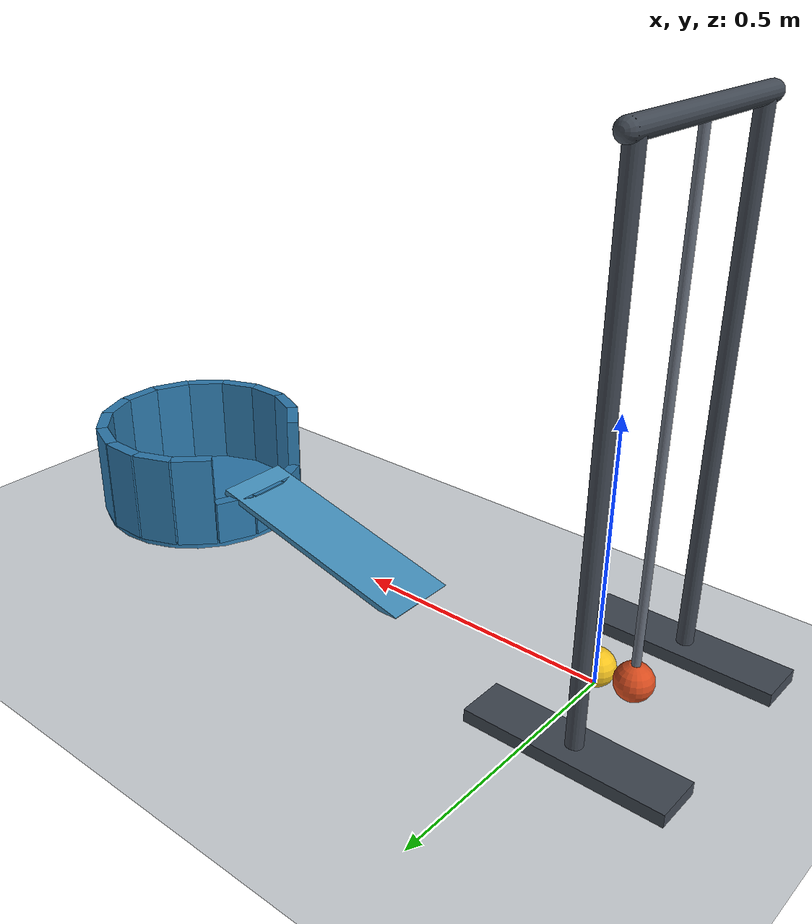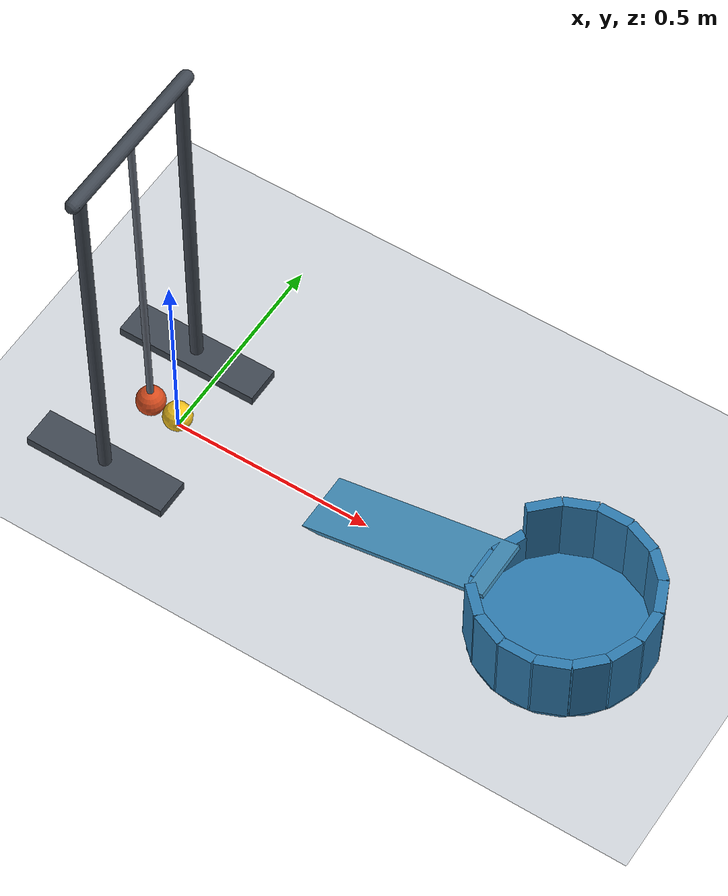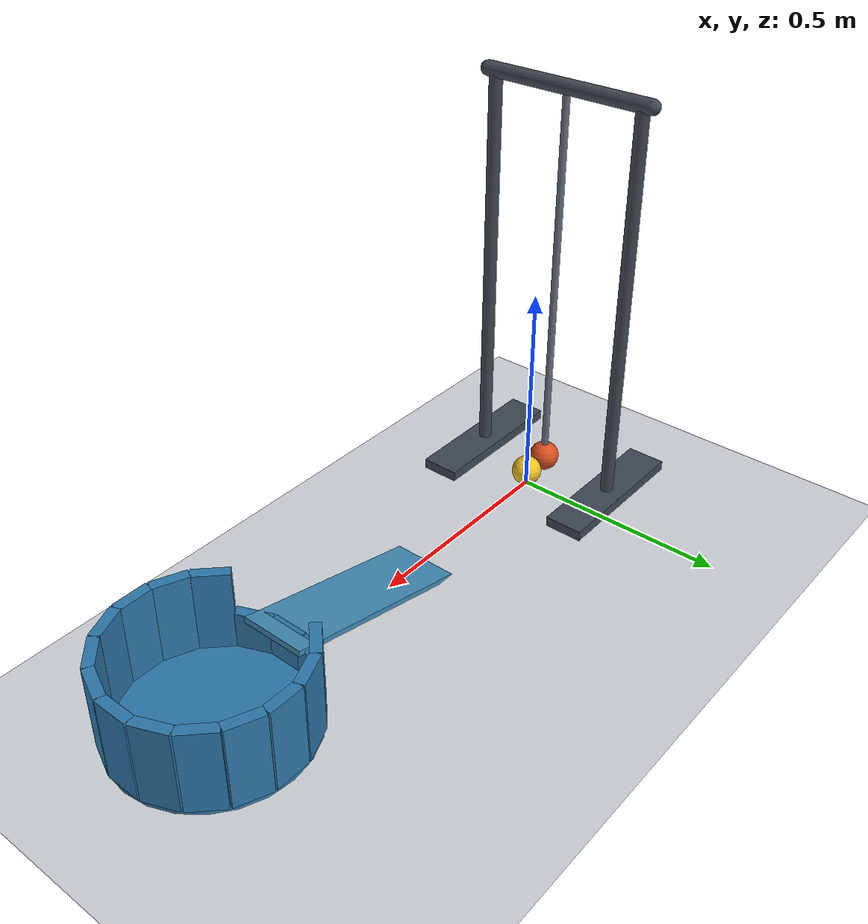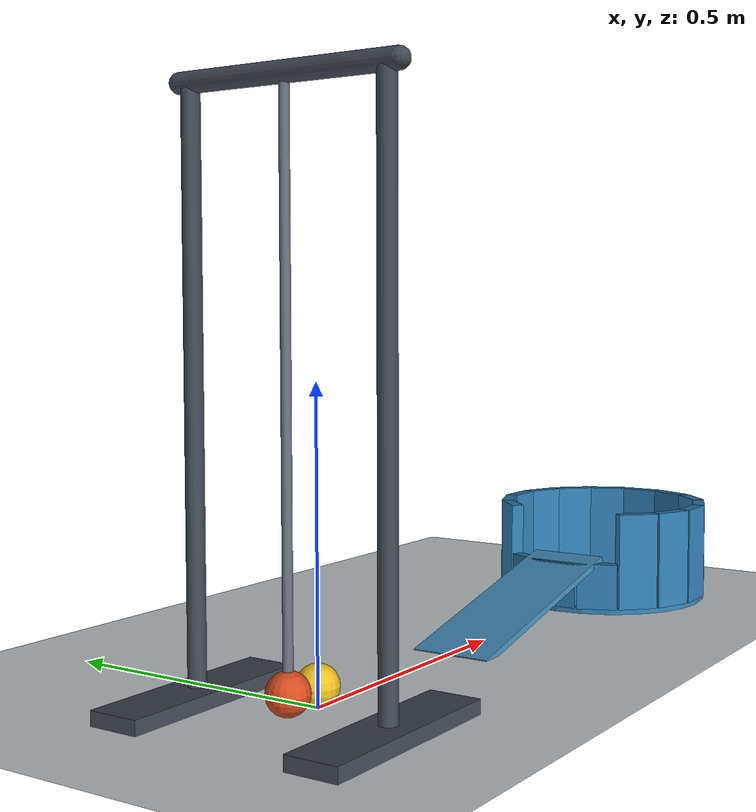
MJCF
<mujoco model="pendulum_ball_into_cup">
  <compiler angle="degree" autolimits="true"/>
  <option timestep="0.002" gravity="0 0 -9.81" integrator="implicitfast" solver="Newton" iterations="100" cone="elliptic"/>
  <size njmax="2000" nconmax="400"/>

  <visual>
    <global azimuth="135" elevation="-25"/>
    <headlight ambient="0.35 0.35 0.35" diffuse="0.7 0.7 0.7" specular="0.2 0.2 0.2"/>
  </visual>

  <worldbody>
    <light name="overhead" pos="0 0 3" dir="0 0 -1" diffuse="0.8 0.8 0.8"/>
    <camera name="overview" pos="2.3 -3.2 1.8" xyaxes="0.866 0.5 0 -0.19 0.329 0.925"/>

    <geom name="floor" type="plane" pos="0 0 0" size="4 3 0.1" rgba="0.82 0.84 0.86 1" friction="0.55 0.002 0.0002" condim="6" solref="0.008 1" solimp="0.95 0.99 0.001"/>

    <body name="support" pos="-0.072 0 0">
      <geom name="support_left_foot" type="box" pos="0 -0.18 0.012" size="0.18 0.045 0.012" rgba="0.25 0.28 0.32 1" contype="0" conaffinity="0"/>
      <geom name="support_right_foot" type="box" pos="0 0.18 0.012" size="0.18 0.045 0.012" rgba="0.25 0.28 0.32 1" contype="0" conaffinity="0"/>
      <geom name="support_left_post" type="capsule" fromto="0 -0.18 0.024 0 -0.18 0.95" size="0.015" rgba="0.25 0.28 0.32 1" contype="0" conaffinity="0"/>
      <geom name="support_right_post" type="capsule" fromto="0 0.18 0.024 0 0.18 0.95" size="0.015" rgba="0.25 0.28 0.32 1" contype="0" conaffinity="0"/>
      <geom name="support_crossbar" type="capsule" fromto="0 -0.20 0.95 0 0.20 0.95" size="0.017" rgba="0.25 0.28 0.32 1" contype="0" conaffinity="0"/>
    </body>

    <!-- The start keyframe releases the pendulum from 50 degrees, at rest. -->
    <body name="pendulum" pos="-0.072 0 0.95">
      <joint name="pendulum_hinge" type="hinge" axis="0 1 0" limited="false" damping="0.002" armature="0.00005"/>
      <geom name="pendulum_rod" type="capsule" fromto="0 0 0 0 0 -0.875" size="0.008" mass="0.020" rgba="0.40 0.43 0.48 1" friction="0.4 0.002 0.0002" solref="0.008 1"/>
      <geom name="pendulum_bob" type="sphere" pos="0 0 -0.91" size="0.035" mass="0.300" rgba="0.85 0.30 0.12 1" friction="0.4 0.002 0.0002" condim="6" solref="0.008 1" solimp="0.95 0.99 0.001"/>
    </body>

    <body name="ball" pos="0 0 0.035">
      <freejoint name="ball_free"/>
      <geom name="ball" type="sphere" size="0.035" mass="0.050" rgba="0.95 0.76 0.12 1" friction="0.55 0.002 0.0002" condim="6" solref="0.008 1" solimp="0.95 0.99 0.001"/>
    </body>

    <!-- Upright cup: circular floor, segmented walls, and a lowered front lip. -->
    <!-- The ramp rises from floor level at x=0.38 to z=0.11 at x=0.84. -->
    <body name="cup" pos="1 0 0">
      <geom name="cup_bottom" type="cylinder" pos="0 0 0.0075" size="0.212 0.0075" rgba="0.18 0.48 0.68 1" friction="1.0 0.01 0.025" condim="6" solref="0.008 1" solimp="0.95 0.99 0.001"/>
      <geom name="cup_entry_ramp" type="box" pos="-0.388605 0 0.049164" euler="0 -13.45 0" size="0.236485 0.075 0.006" rgba="0.26 0.56 0.73 1" friction="0.55 0.002 0.0002" condim="6" solref="0.008 1" solimp="0.95 0.99 0.001"/>

      <geom name="cup_wall_00" type="box" pos="0.200000 0 0.105" euler="0 0 0" size="0.012 0.040 0.095" rgba="0.18 0.48 0.68 1" friction="0.8 0.01 0.004" condim="6" solref="0.008 1"/>
      <geom name="cup_wall_01" type="box" pos="0.184776 0.076537 0.105" euler="0 0 22.5" size="0.012 0.040 0.095" rgba="0.18 0.48 0.68 1" friction="0.8 0.01 0.004" condim="6" solref="0.008 1"/>
      <geom name="cup_wall_02" type="box" pos="0.141421 0.141421 0.105" euler="0 0 45" size="0.012 0.040 0.095" rgba="0.18 0.48 0.68 1" friction="0.8 0.01 0.004" condim="6" solref="0.008 1"/>
      <geom name="cup_wall_03" type="box" pos="0.076537 0.184776 0.105" euler="0 0 67.5" size="0.012 0.040 0.095" rgba="0.18 0.48 0.68 1" friction="0.8 0.01 0.004" condim="6" solref="0.008 1"/>
      <geom name="cup_wall_04" type="box" pos="0 0.200000 0.105" euler="0 0 90" size="0.012 0.040 0.095" rgba="0.18 0.48 0.68 1" friction="0.8 0.01 0.004" condim="6" solref="0.008 1"/>
      <geom name="cup_wall_05" type="box" pos="-0.076537 0.184776 0.105" euler="0 0 112.5" size="0.012 0.040 0.095" rgba="0.18 0.48 0.68 1" friction="0.8 0.01 0.004" condim="6" solref="0.008 1"/>
      <geom name="cup_wall_06" type="box" pos="-0.141421 0.141421 0.105" euler="0 0 135" size="0.012 0.040 0.095" rgba="0.18 0.48 0.68 1" friction="0.8 0.01 0.004" condim="6" solref="0.008 1"/>

      <geom name="cup_wall_07" type="box" pos="-0.184776 0.076537 0.055" euler="0 0 157.5" size="0.012 0.040 0.045" rgba="0.18 0.48 0.68 1" friction="0.8 0.01 0.004" condim="6" solref="0.008 1"/>
      <geom name="cup_wall_08" type="box" pos="-0.200000 0 0.055" euler="0 0 180" size="0.012 0.040 0.045" rgba="0.18 0.48 0.68 1" friction="0.8 0.01 0.004" condim="6" solref="0.008 1"/>
      <geom name="cup_wall_09" type="box" pos="-0.184776 -0.076537 0.055" euler="0 0 202.5" size="0.012 0.040 0.045" rgba="0.18 0.48 0.68 1" friction="0.8 0.01 0.004" condim="6" solref="0.008 1"/>

      <geom name="cup_wall_10" type="box" pos="-0.141421 -0.141421 0.105" euler="0 0 225" size="0.012 0.040 0.095" rgba="0.18 0.48 0.68 1" friction="0.8 0.01 0.004" condim="6" solref="0.008 1"/>
      <geom name="cup_wall_11" type="box" pos="-0.076537 -0.184776 0.105" euler="0 0 247.5" size="0.012 0.040 0.095" rgba="0.18 0.48 0.68 1" friction="0.8 0.01 0.004" condim="6" solref="0.008 1"/>
      <geom name="cup_wall_12" type="box" pos="0 -0.200000 0.105" euler="0 0 270" size="0.012 0.040 0.095" rgba="0.18 0.48 0.68 1" friction="0.8 0.01 0.004" condim="6" solref="0.008 1"/>
      <geom name="cup_wall_13" type="box" pos="0.076537 -0.184776 0.105" euler="0 0 292.5" size="0.012 0.040 0.095" rgba="0.18 0.48 0.68 1" friction="0.8 0.01 0.004" condim="6" solref="0.008 1"/>
      <geom name="cup_wall_14" type="box" pos="0.141421 -0.141421 0.105" euler="0 0 315" size="0.012 0.040 0.095" rgba="0.18 0.48 0.68 1" friction="0.8 0.01 0.004" condim="6" solref="0.008 1"/>
      <geom name="cup_wall_15" type="box" pos="0.184776 -0.076537 0.105" euler="0 0 337.5" size="0.012 0.040 0.095" rgba="0.18 0.48 0.68 1" friction="0.8 0.01 0.004" condim="6" solref="0.008 1"/>
    </body>
  </worldbody>

  <keyframe>
    <key name="start" qpos="0.872664626 0 0 0.035 1 0 0 0" qvel="0 0 0 0 0 0 0"/>
  </keyframe>
</mujoco>
